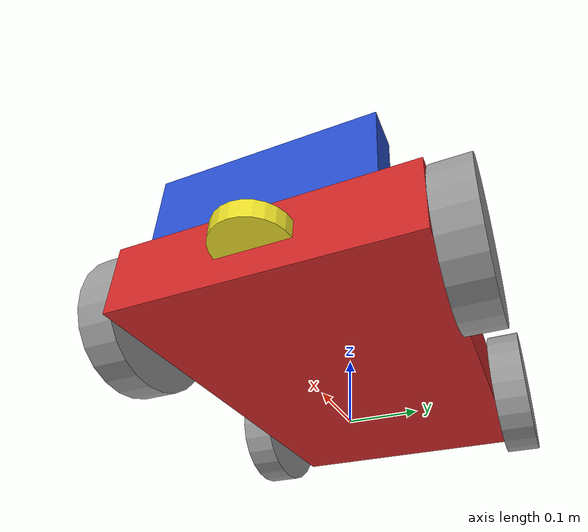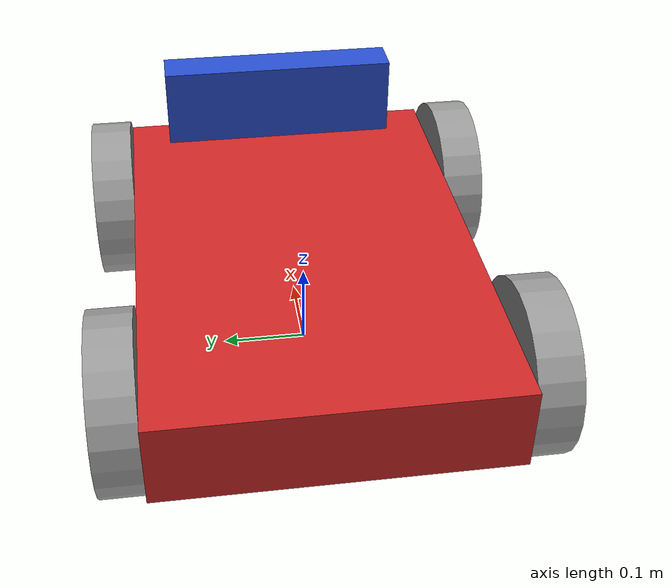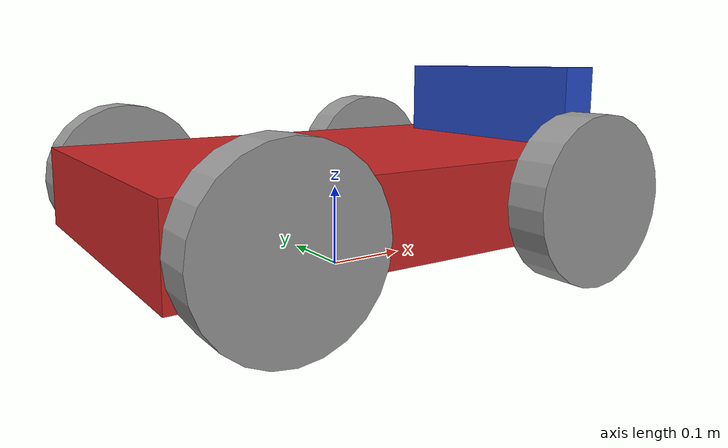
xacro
<?xml version="1.0"?>
<robot xmlns:xacro="http://www.ros.org/wiki/xacro">

    <xacro:property name="base_length" value="0.6" />
    <xacro:property name="base_width" value="0.4" />
    <xacro:property name="base_height" value="0.1" />

    <xacro:property name="wheel_radius" value="0.1" />
    <xacro:property name="wheel_length" value="0.05" />

    <xacro:property name="camera_length" value="0.05" />
    <xacro:property name="camera_width" value="0.3" />
    <xacro:property name="camera_height" value="0.1" />

    <xacro:property name="lidar_radius" value="0.05" />
    <xacro:property name="lidar_length" value="0.025" />

    <link name="base_link">
        <visual>
            <geometry>
                <box size="${base_length} ${base_width} ${base_height}" />
            </geometry>
            <origin xyz="0 0 ${base_height / 2.0}" rpy="0 0 0" />
            <material name="red" />
        </visual>
        <collision>
            <geometry>
                <box size="${base_length} ${base_width} ${base_height}" />
            </geometry>
            <origin xyz="0 0 ${base_height / 2.0}" rpy="0 0 0" />
        </collision>
        <xacro:box_inertia m="5.0" l="${2*base_length}" w="${2*base_width}" h="${2*base_height}"
                            xyz="0 0 ${base_height / 2.0}" rpy="0 0 0" />
    </link>

    <xacro:macro name="wheel_link" params="prefix">
        <link name="${prefix}_wheel_link">
            <visual>
                <geometry>
                    <cylinder radius="${wheel_radius}" length="${wheel_length}" />
                </geometry>
                <origin xyz="0 0 0" rpy="${pi / 2.0} 0 0" />
                <material name="grey" />
            </visual>
            <collision>
                <geometry>
                    <cylinder radius="${wheel_radius}" length="${wheel_length}" />
                </geometry>
                <origin xyz="0 0 0" rpy="${pi / 2.0} 0 0" />
            </collision>
            <xacro:cylinder_inertia m="1.0" r="${2*wheel_radius}" h="${2*wheel_length}"
                                xyz="0 0 0" rpy="${pi / 2.0} 0 0" />
        </link>
    </xacro:macro>

    <xacro:wheel_link prefix="right_front" />
    <xacro:wheel_link prefix="left_front" />
    <xacro:wheel_link prefix="right_back" />
    <xacro:wheel_link prefix="left_back" />

    <link name="lidar_link">
        <visual>
            <geometry>
                <cylinder radius="${lidar_radius}" length="${lidar_length}" />
            </geometry>
            <origin xyz="0 0 0" rpy="0 0 0" />
            <material name="yellow" />
        </visual>
        <collision>
            <geometry>
                <cylinder radius="${lidar_radius}" length="${lidar_length}" />
            </geometry>
            <origin xyz="0 0 0" rpy="0 0 0" />
        </collision>
        <xacro:cylinder_inertia m="1.0" r="${2*lidar_radius}" h="${2*lidar_length}"
                            xyz="0 0 0" rpy="0 0 0" />
    </link>

    <link name="camera_link">
        <visual>
            <geometry>
                <box size="${camera_length} ${camera_width} ${camera_height}" />
            </geometry>
            <origin xyz="0 0 0" rpy="0 0 0" />
            <material name="blue" />
        </visual>
        <collision>
            <geometry>
                <box size="${camera_length} ${camera_width} ${camera_height}" />
            </geometry>
            <origin xyz="0 0 0" rpy="0 0 0" />
        </collision>
        <xacro:box_inertia m="0.1" l="${camera_length}" w="${camera_width}" h="${camera_height}"
                            xyz="0 0 0" rpy="0 0 0" />
    </link>

    <link name="camera_link_optical" />

    <link name="base_footprint" />

    <joint name="base_right_front_wheel_joint" type="continuous">
        <parent link="base_link" />
        <child link="right_front_wheel_link" />
        <origin xyz="${base_length / 3.0} ${(-base_width / 2.0) - (wheel_length / 2.0)} ${base_height / 2.0}" rpy="0 0 0" />
        <axis xyz="0 1 0" />
    </joint>

    <joint name="base_left_front_wheel_joint" type="continuous">
        <parent link="base_link" />
        <child link="left_front_wheel_link" />
        <origin xyz="${base_length / 3.0} ${(base_width / 2.0) + (wheel_length / 2.0)} ${base_height / 2.0}" rpy="0 0 0" />
        <axis xyz="0 1 0" />
    </joint>

    <joint name="base_right_back_wheel_joint" type="continuous">
        <parent link="base_link" />
        <child link="right_back_wheel_link" />
        <origin xyz="${-base_length / 3.0} ${(-base_width / 2.0) - (wheel_length / 2.0)} ${base_height / 2.0}" rpy="0 0 0" />
        <axis xyz="0 1 0" />
    </joint>

    <joint name="base_left_back_wheel_joint" type="continuous">
        <parent link="base_link" />
        <child link="left_back_wheel_link" />
        <origin xyz="${-base_length / 3.0} ${(base_width / 2.0) + (wheel_length / 2.0)} ${base_height / 2.0}" rpy="0 0 0" />
        <axis xyz="0 1 0" />
    </joint>

    <joint name="base_camera_joint" type="fixed">
        <parent link="base_link" />
        <child link="camera_link" />
        <origin xyz="${(base_length / 2.0) - (camera_length / 2.0)} 0 ${(base_height / 2.0 + camera_height)}" rpy="0 0 0" />
    </joint>

    <joint name="camera_optical_joint" type="fixed">
        <origin xyz="0 0 0" rpy="${-pi/2} 0 ${-pi/2}"/>
        <parent link="camera_link"/>
        <child link="camera_link_optical"/>
    </joint>

    <joint name="base_lidar_joint" type="fixed">
        <parent link="base_link" />
        <child link="lidar_link" />
        <origin xyz="${base_length / 2.0} 0 ${base_height / 2.0}" rpy="0 0 0" />
        <axis xyz="0 0 0" />
    </joint>

    <joint name="base_footprint_joint" type="fixed">
        <parent link="base_footprint" />
        <child link="base_link" />
        <origin xyz="0 0 ${wheel_radius - (base_height / 2.0)}" rpy="0 0 0" />
    </joint>

</robot>
